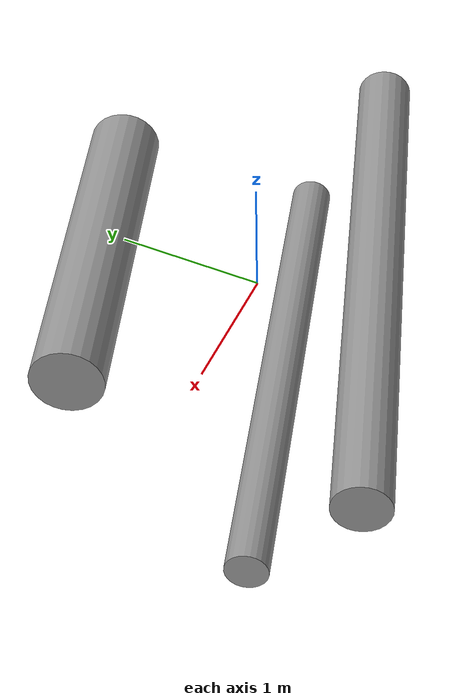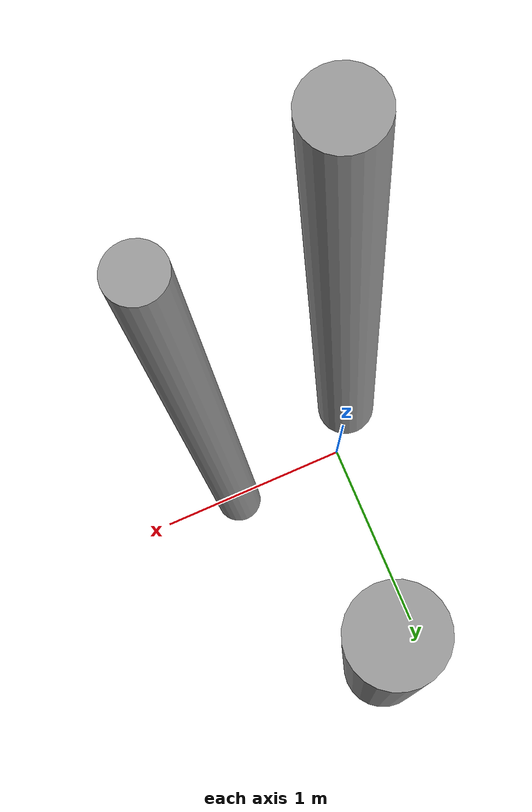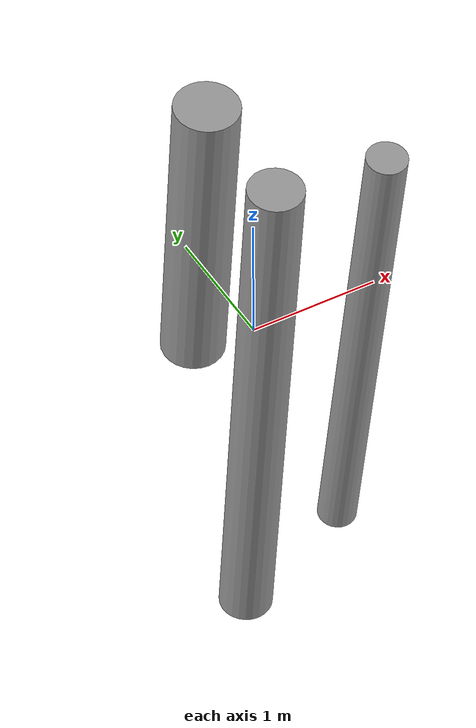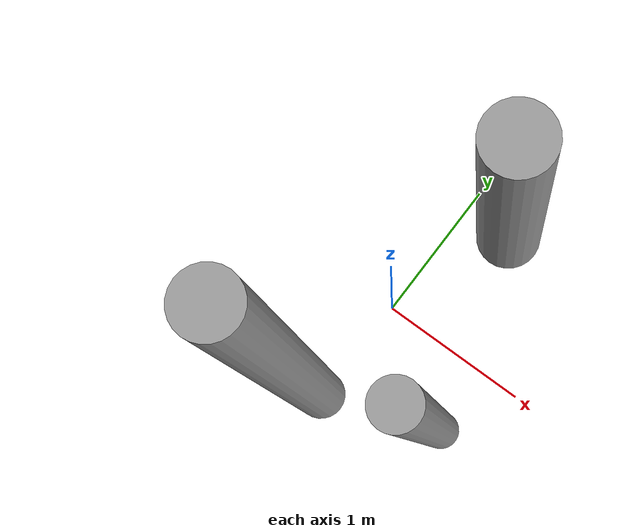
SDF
<?xml version='1.0'?>
<sdf version='1.6'>
  <model name='Rocks_Better2'>
    <link name='link_0'>
      <inertial>
        <mass>4.48082</mass>
        <inertia>
          <ixx>7.54219</ixx>
          <ixy>0</ixy>
          <ixz>0</ixz>
          <iyy>7.54219</iyy>
          <iyz>0</iyz>
          <izz>0.0896163</izz>
        </inertia>
        <pose frame=''>0 0 0 0 -0 0</pose>
      </inertial>
      <pose frame=''>-0.369962 -0.73438 0.057359 0.100188 -0 0</pose>
      <gravity>1</gravity>
      <self_collide>0</self_collide>
      <kinematic>0</kinematic>
      <enable_wind>0</enable_wind>
      <visual name='visual'>
        <pose frame=''>0 0 0 0 -0 0</pose>
        <geometry>
          <cylinder>
            <radius>0.2</radius>
            <length>4.48091</length>
          </cylinder>
        </geometry>
        <material>
          <lighting>1</lighting>
          <script>
            <uri>file://media/materials/scripts/gazebo.material</uri>
            <name>Gazebo/Grey</name>
          </script>
          <shader type='vertex'>
            <normal_map>__default__</normal_map>
          </shader>
          <ambient>0.3 0.3 0.3 1</ambient>
          <diffuse>0.7 0.7 0.7 1</diffuse>
          <specular>0.01 0.01 0.01 1</specular>
          <emissive>0 0 0 1</emissive>
        </material>
        <transparency>0</transparency>
        <cast_shadows>1</cast_shadows>
      </visual>
      <collision name='collision'>
        <laser_retro>0</laser_retro>
        <max_contacts>10</max_contacts>
        <pose frame=''>0 0 0 0 -0 0</pose>
        <geometry>
          <cylinder>
            <radius>0.2</radius>
            <length>4.48091</length>
          </cylinder>
        </geometry>
        <surface>
          <friction>
            <ode>
              <mu>1</mu>
              <mu2>1</mu2>
              <fdir1>0 0 0</fdir1>
              <slip1>0</slip1>
              <slip2>0</slip2>
            </ode>
            <torsional>
              <coefficient>1</coefficient>
              <patch_radius>0</patch_radius>
              <surface_radius>0</surface_radius>
              <use_patch_radius>1</use_patch_radius>
              <ode>
                <slip>0</slip>
              </ode>
            </torsional>
          </friction>
          <bounce>
            <restitution_coefficient>0</restitution_coefficient>
            <threshold>1e+06</threshold>
          </bounce>
          <contact>
            <collide_without_contact>0</collide_without_contact>
            <collide_without_contact_bitmask>1</collide_without_contact_bitmask>
            <collide_bitmask>1</collide_bitmask>
            <ode>
              <soft_cfm>0</soft_cfm>
              <soft_erp>0.2</soft_erp>
              <kp>1e+13</kp>
              <kd>1</kd>
              <max_vel>0.01</max_vel>
              <min_depth>0</min_depth>
            </ode>
            <bullet>
              <split_impulse>1</split_impulse>
              <split_impulse_penetration_threshold>-0.01</split_impulse_penetration_threshold>
              <soft_cfm>0</soft_cfm>
              <soft_erp>0.2</soft_erp>
              <kp>1e+13</kp>
              <kd>1</kd>
            </bullet>
          </contact>
        </surface>
      </collision>
    </link>
    <link name='link_1'>
      <inertial>
        <mass>2.61121</mass>
        <inertia>
          <ixx>1.52449</ixx>
          <ixy>0</ixy>
          <ixz>0</ixz>
          <iyy>1.52449</iyy>
          <iyz>0</iyz>
          <izz>0.0816002</izz>
        </inertia>
        <pose frame=''>0 0 0 0 -0 0</pose>
      </inertial>
      <pose frame=''>0.184451 1.12333 0 0.105873 -0 0</pose>
      <gravity>1</gravity>
      <self_collide>0</self_collide>
      <kinematic>0</kinematic>
      <enable_wind>0</enable_wind>
      <visual name='visual'>
        <pose frame=''>0 0 0 0 -0 0</pose>
        <geometry>
          <cylinder>
            <radius>0.25</radius>
            <length>2.61121</length>
          </cylinder>
        </geometry>
        <material>
          <lighting>1</lighting>
          <script>
            <uri>file://media/materials/scripts/gazebo.material</uri>
            <name>Gazebo/Grey</name>
          </script>
          <shader type='vertex'>
            <normal_map>__default__</normal_map>
          </shader>
          <ambient>0.3 0.3 0.3 1</ambient>
          <diffuse>0.7 0.7 0.7 1</diffuse>
          <specular>0.01 0.01 0.01 1</specular>
          <emissive>0 0 0 1</emissive>
        </material>
        <transparency>0</transparency>
        <cast_shadows>1</cast_shadows>
      </visual>
      <collision name='collision'>
        <laser_retro>0</laser_retro>
        <max_contacts>10</max_contacts>
        <pose frame=''>0 0 0 0 -0 0</pose>
        <geometry>
          <cylinder>
            <radius>0.25</radius>
            <length>2.6112</length>
          </cylinder>
        </geometry>
        <surface>
          <friction>
            <ode>
              <mu>1</mu>
              <mu2>1</mu2>
              <fdir1>0 0 0</fdir1>
              <slip1>0</slip1>
              <slip2>0</slip2>
            </ode>
            <torsional>
              <coefficient>1</coefficient>
              <patch_radius>0</patch_radius>
              <surface_radius>0</surface_radius>
              <use_patch_radius>1</use_patch_radius>
              <ode>
                <slip>0</slip>
              </ode>
            </torsional>
          </friction>
          <bounce>
            <restitution_coefficient>0</restitution_coefficient>
            <threshold>1e+06</threshold>
          </bounce>
          <contact>
            <collide_without_contact>0</collide_without_contact>
            <collide_without_contact_bitmask>1</collide_without_contact_bitmask>
            <collide_bitmask>1</collide_bitmask>
            <ode>
              <soft_cfm>0</soft_cfm>
              <soft_erp>0.2</soft_erp>
              <kp>1e+13</kp>
              <kd>1</kd>
              <max_vel>0.01</max_vel>
              <min_depth>0</min_depth>
            </ode>
            <bullet>
              <split_impulse>1</split_impulse>
              <split_impulse_penetration_threshold>-0.01</split_impulse_penetration_threshold>
              <soft_cfm>0</soft_cfm>
              <soft_erp>0.2</soft_erp>
              <kp>1e+13</kp>
              <kd>1</kd>
            </bullet>
          </contact>
        </surface>
      </collision>
    </link>
    <link name='link_2'>
      <inertial>
        <mass>4.08063</mass>
        <inertia>
          <ixx>5.68523</ixx>
          <ixy>0</ixy>
          <ixz>0</ixz>
          <iyy>5.68523</iyy>
          <iyz>0</iyz>
          <izz>0.0459071</izz>
        </inertia>
        <pose frame=''>0 0 0 0 -0 0</pose>
      </inertial>
      <pose frame=''>0.609793 -0.476955 -0.032656 0.146368 -0 0</pose>
      <gravity>1</gravity>
      <self_collide>0</self_collide>
      <kinematic>0</kinematic>
      <enable_wind>0</enable_wind>
      <visual name='visual'>
        <pose frame=''>0 0 0 0 -0 0</pose>
        <geometry>
          <cylinder>
            <radius>0.15</radius>
            <length>4.08059</length>
          </cylinder>
        </geometry>
        <material>
          <lighting>1</lighting>
          <script>
            <uri>file://media/materials/scripts/gazebo.material</uri>
            <name>Gazebo/Grey</name>
          </script>
          <shader type='vertex'>
            <normal_map>__default__</normal_map>
          </shader>
          <ambient>0.3 0.3 0.3 1</ambient>
          <diffuse>0.7 0.7 0.7 1</diffuse>
          <specular>0.01 0.01 0.01 1</specular>
          <emissive>0 0 0 1</emissive>
        </material>
        <transparency>0</transparency>
        <cast_shadows>1</cast_shadows>
      </visual>
      <collision name='collision'>
        <laser_retro>0</laser_retro>
        <max_contacts>10</max_contacts>
        <pose frame=''>0 0 0 0 -0 0</pose>
        <geometry>
          <cylinder>
            <radius>0.15</radius>
            <length>4.08059</length>
          </cylinder>
        </geometry>
        <surface>
          <friction>
            <ode>
              <mu>1</mu>
              <mu2>1</mu2>
              <fdir1>0 0 0</fdir1>
              <slip1>0</slip1>
              <slip2>0</slip2>
            </ode>
            <torsional>
              <coefficient>1</coefficient>
              <patch_radius>0</patch_radius>
              <surface_radius>0</surface_radius>
              <use_patch_radius>1</use_patch_radius>
              <ode>
                <slip>0</slip>
              </ode>
            </torsional>
          </friction>
          <bounce>
            <restitution_coefficient>0</restitution_coefficient>
            <threshold>1e+06</threshold>
          </bounce>
          <contact>
            <collide_without_contact>0</collide_without_contact>
            <collide_without_contact_bitmask>1</collide_without_contact_bitmask>
            <collide_bitmask>1</collide_bitmask>
            <ode>
              <soft_cfm>0</soft_cfm>
              <soft_erp>0.2</soft_erp>
              <kp>1e+13</kp>
              <kd>1</kd>
              <max_vel>0.01</max_vel>
              <min_depth>0</min_depth>
            </ode>
            <bullet>
              <split_impulse>1</split_impulse>
              <split_impulse_penetration_threshold>-0.01</split_impulse_penetration_threshold>
              <soft_cfm>0</soft_cfm>
              <soft_erp>0.2</soft_erp>
              <kp>1e+13</kp>
              <kd>1</kd>
            </bullet>
          </contact>
        </surface>
      </collision>
    </link>
    <static>0</static>
    <allow_auto_disable>1</allow_auto_disable>
  </model>
</sdf>
